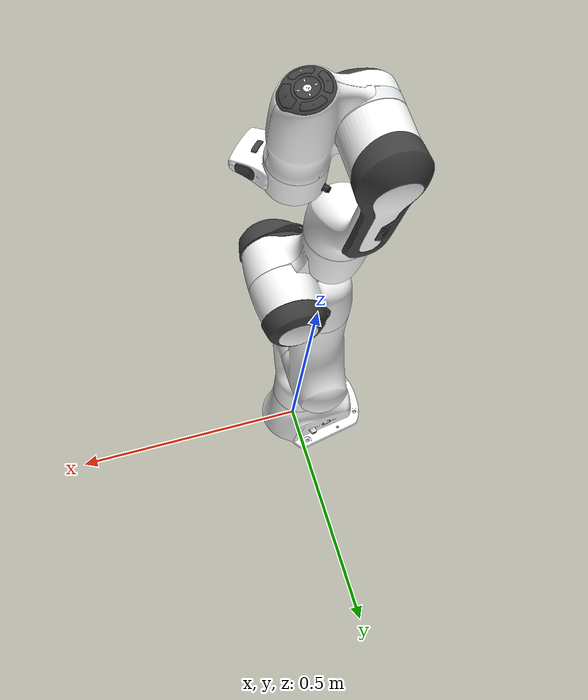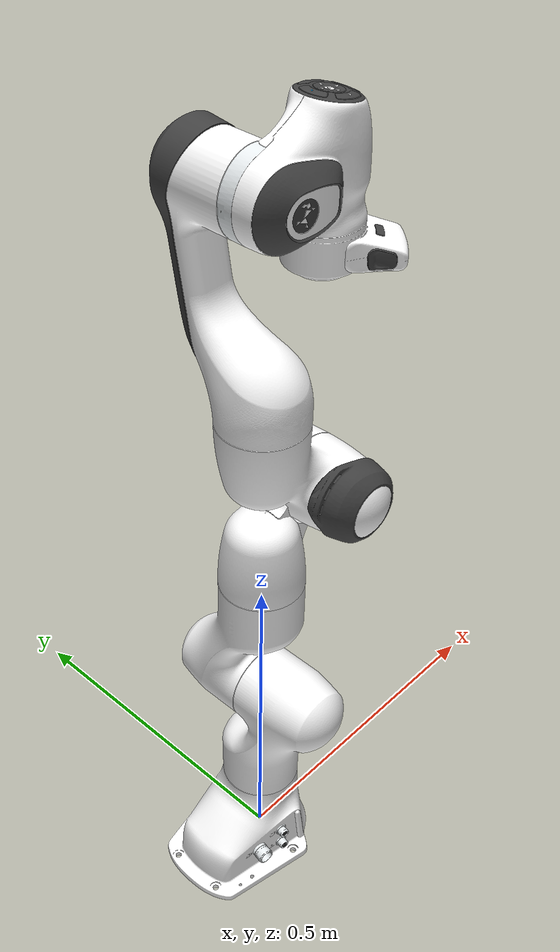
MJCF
<mujoco model="panda nohand">
  <compiler angle="radian" meshdir="assets" autolimits="true"/>

  <option integrator="implicitfast" impratio="10"/>

  <default>
    <default class="panda">
      <material specular="0.5" shininess="0.25"/>
      <joint armature="0.1" damping="1" axis="0 0 1" range="-2.8973 2.8973"/>
      <general dyntype="none" biastype="affine" ctrlrange="-2.8973 2.8973" forcerange="-87 87"/>
      <default class="finger">
        <joint axis="0 1 0" type="slide" range="0 0.04"/>
      </default>

      <default class="panda/visual">
        <geom type="mesh" contype="0" conaffinity="0" group="2"/>
      </default>
      <default class="panda/collision">
        <geom type="mesh" group="3"/>
      </default>
      <site size="0.001" rgba="0.5 0.5 0.5 0.3" group="4"/>
    </default>
  </default>

  <asset>
    <material class="panda" name="white" rgba="1 1 1 1"/>
    <material class="panda" name="off_white" rgba="0.901961 0.921569 0.929412 1"/>
    <material class="panda" name="dark_grey" rgba="0.25 0.25 0.25 1"/>
    <material class="panda" name="green" rgba="0 1 0 1"/>
    <material class="panda" name="light_blue" rgba="0.039216 0.541176 0.780392 1"/>

    <!-- Collision meshes -->
    <mesh name="link0_c" file="link0.stl"/>
    <mesh name="link1_c" file="link1.stl"/>
    <mesh name="link2_c" file="link2.stl"/>
    <mesh name="link3_c" file="link3.stl"/>
    <mesh name="link4_c" file="link4.stl"/>
    <mesh name="link5_c0" file="link5_collision_0.obj"/>
    <mesh name="link5_c1" file="link5_collision_1.obj"/>
    <mesh name="link5_c2" file="link5_collision_2.obj"/>
    <mesh name="link6_c" file="link6.stl"/>
    <mesh name="link7_c" file="link7.stl"/>

    <!-- Visual meshes -->
    <mesh file="link0_0.obj"/>
    <mesh file="link0_1.obj"/>
    <mesh file="link0_2.obj"/>
    <mesh file="link0_3.obj"/>
    <mesh file="link0_4.obj"/>
    <mesh file="link0_5.obj"/>
    <mesh file="link0_7.obj"/>
    <mesh file="link0_8.obj"/>
    <mesh file="link0_9.obj"/>
    <mesh file="link0_10.obj"/>
    <mesh file="link0_11.obj"/>
    <mesh file="link1.obj"/>
    <mesh file="link2.obj"/>
    <mesh file="link3_0.obj"/>
    <mesh file="link3_1.obj"/>
    <mesh file="link3_2.obj"/>
    <mesh file="link3_3.obj"/>
    <mesh file="link4_0.obj"/>
    <mesh file="link4_1.obj"/>
    <mesh file="link4_2.obj"/>
    <mesh file="link4_3.obj"/>
    <mesh file="link5_0.obj"/>
    <mesh file="link5_1.obj"/>
    <mesh file="link5_2.obj"/>
    <mesh file="link6_0.obj"/>
    <mesh file="link6_1.obj"/>
    <mesh file="link6_2.obj"/>
    <mesh file="link6_3.obj"/>
    <mesh file="link6_4.obj"/>
    <mesh file="link6_5.obj"/>
    <mesh file="link6_6.obj"/>
    <mesh file="link6_7.obj"/>
    <mesh file="link6_8.obj"/>
    <mesh file="link6_9.obj"/>
    <mesh file="link6_10.obj"/>
    <mesh file="link6_11.obj"/>
    <mesh file="link6_12.obj"/>
    <mesh file="link6_13.obj"/>
    <mesh file="link6_14.obj"/>
    <mesh file="link6_15.obj"/>
    <mesh file="link6_16.obj"/>
    <mesh file="link7_0.obj"/>
    <mesh file="link7_1.obj"/>
    <mesh file="link7_2.obj"/>
    <mesh file="link7_3.obj"/>
    <mesh file="link7_4.obj"/>
    <mesh file="link7_5.obj"/>
    <mesh file="link7_6.obj"/>
    <mesh file="link7_7.obj"/>
  </asset>

  <worldbody>
    <light name="top" pos="0 0 2" mode="trackcom"/>
    <body name="link0" childclass="panda">
      <inertial mass="0.629769" pos="-0.041018 -0.00014 0.049974"
        fullinertia="0.00315 0.00388 0.004285 8.2904e-7 0.00015 8.2299e-6"/>
      <geom mesh="link0_0" material="off_white" class="panda/visual"/>
      <geom mesh="link0_1" material="dark_grey" class="panda/visual"/>
      <geom mesh="link0_2" material="off_white" class="panda/visual"/>
      <geom mesh="link0_3" material="dark_grey" class="panda/visual"/>
      <geom mesh="link0_4" material="off_white" class="panda/visual"/>
      <geom mesh="link0_5" material="dark_grey" class="panda/visual"/>
      <geom mesh="link0_7" material="white" class="panda/visual"/>
      <geom mesh="link0_8" material="white" class="panda/visual"/>
      <geom mesh="link0_9" material="dark_grey" class="panda/visual"/>
      <geom mesh="link0_10" material="off_white" class="panda/visual"/>
      <geom mesh="link0_11" material="white" class="panda/visual"/>
      <geom mesh="link0_c" class="panda/collision"/>
      <body name="link1" pos="0 0 0.333">
        <inertial mass="4.970684" pos="0.003875 0.002081 -0.04762"
          fullinertia="0.70337 0.70661 0.0091170 -0.00013900 0.0067720 0.019169"/>
        <joint name="joint1"/>
        <geom material="white" mesh="link1" class="panda/visual"/>
        <geom mesh="link1_c" class="panda/collision"/>
        <body name="link2" quat="1 -1 0 0">
          <inertial mass="0.646926" pos="-0.003141 -0.02872 0.003495"
            fullinertia="0.0079620 2.8110e-2 2.5995e-2 -3.925e-3 1.0254e-2 7.04e-4"/>
          <joint name="joint2" range="-1.7628 1.7628"/>
          <geom material="white" mesh="link2" class="panda/visual"/>
          <geom mesh="link2_c" class="panda/collision"/>
          <body name="link3" pos="0 -0.316 0" quat="1 1 0 0">
            <joint name="joint3"/>
            <inertial mass="3.228604" pos="2.7518e-2 3.9252e-2 -6.6502e-2"
              fullinertia="3.7242e-2 3.6155e-2 1.083e-2 -4.761e-3 -1.1396e-2 -1.2805e-2"/>
            <geom mesh="link3_0" material="white" class="panda/visual"/>
            <geom mesh="link3_1" material="white" class="panda/visual"/>
            <geom mesh="link3_2" material="white" class="panda/visual"/>
            <geom mesh="link3_3" material="dark_grey" class="panda/visual"/>
            <geom mesh="link3_c" class="panda/collision"/>
            <body name="link4" pos="0.0825 0 0" quat="1 1 0 0">
              <inertial mass="3.587895" pos="-5.317e-2 1.04419e-1 2.7454e-2"
                fullinertia="2.5853e-2 1.9552e-2 2.8323e-2 7.796e-3 -1.332e-3 8.641e-3"/>
              <joint name="joint4" range="-3.0718 -0.0698"/>
              <geom mesh="link4_0" material="white" class="panda/visual"/>
              <geom mesh="link4_1" material="white" class="panda/visual"/>
              <geom mesh="link4_2" material="dark_grey" class="panda/visual"/>
              <geom mesh="link4_3" material="white" class="panda/visual"/>
              <geom mesh="link4_c" class="panda/collision"/>
              <body name="link5" pos="-0.0825 0.384 0" quat="1 -1 0 0">
                <inertial mass="1.225946" pos="-1.1953e-2 4.1065e-2 -3.8437e-2"
                  fullinertia="3.5549e-2 2.9474e-2 8.627e-3 -2.117e-3 -4.037e-3 2.29e-4"/>
                <joint name="joint5"/>
                <geom mesh="link5_0" material="dark_grey" class="panda/visual"/>
                <geom mesh="link5_1" material="white" class="panda/visual"/>
                <geom mesh="link5_2" material="white" class="panda/visual"/>
                <geom mesh="link5_c0" class="panda/collision"/>
                <geom mesh="link5_c1" class="panda/collision"/>
                <geom mesh="link5_c2" class="panda/collision"/>
                <body name="link6" quat="1 1 0 0">
                  <inertial mass="1.666555" pos="6.0149e-2 -1.4117e-2 -1.0517e-2"
                    fullinertia="1.964e-3 4.354e-3 5.433e-3 1.09e-4 -1.158e-3 3.41e-4"/>
                  <joint name="joint6" range="-0.0175 3.7525"/>
                  <geom mesh="link6_0" material="off_white" class="panda/visual"/>
                  <geom mesh="link6_1" material="white" class="panda/visual"/>
                  <geom mesh="link6_2" material="dark_grey" class="panda/visual"/>
                  <geom mesh="link6_3" material="white" class="panda/visual"/>
                  <geom mesh="link6_4" material="white" class="panda/visual"/>
                  <geom mesh="link6_5" material="white" class="panda/visual"/>
                  <geom mesh="link6_6" material="white" class="panda/visual"/>
                  <geom mesh="link6_7" material="light_blue" class="panda/visual"/>
                  <geom mesh="link6_8" material="light_blue" class="panda/visual"/>
                  <geom mesh="link6_9" material="dark_grey" class="panda/visual"/>
                  <geom mesh="link6_10" material="dark_grey" class="panda/visual"/>
                  <geom mesh="link6_11" material="white" class="panda/visual"/>
                  <geom mesh="link6_12" material="green" class="panda/visual"/>
                  <geom mesh="link6_13" material="white" class="panda/visual"/>
                  <geom mesh="link6_14" material="dark_grey" class="panda/visual"/>
                  <geom mesh="link6_15" material="dark_grey" class="panda/visual"/>
                  <geom mesh="link6_16" material="white" class="panda/visual"/>
                  <geom mesh="link6_c" class="panda/collision"/>
                  <body name="link7" pos="0.088 0 0" quat="1 1 0 0">
                    <inertial mass="7.35522e-01" pos="1.0517e-2 -4.252e-3 6.1597e-2"
                      fullinertia="1.2516e-2 1.0027e-2 4.815e-3 -4.28e-4 -1.196e-3 -7.41e-4"/>
                    <joint name="joint7"/>
                    <geom mesh="link7_0" material="white" class="panda/visual"/>
                    <geom mesh="link7_1" material="dark_grey" class="panda/visual"/>
                    <geom mesh="link7_2" material="dark_grey" class="panda/visual"/>
                    <geom mesh="link7_3" material="dark_grey" class="panda/visual"/>
                    <geom mesh="link7_4" material="dark_grey" class="panda/visual"/>
                    <geom mesh="link7_5" material="dark_grey" class="panda/visual"/>
                    <geom mesh="link7_6" material="dark_grey" class="panda/visual"/>
                    <geom mesh="link7_7" material="white" class="panda/visual"/>
                    <geom mesh="link7_c" class="panda/collision"/>
                    <body name="attachment" pos="0 0 0.107" quat="0.3826834 0 0 0.9238795">
                      <site name="attachment_site"/>
                    </body>
                  </body>
                </body>
              </body>
            </body>
          </body>
        </body>
      </body>
    </body>
  </worldbody>

  <actuator>
    <general class="panda" name="actuator1" joint="joint1" gainprm="4500" biasprm="0 -4500 -450"/>
    <general class="panda" name="actuator2" joint="joint2" gainprm="4500" biasprm="0 -4500 -450"
      ctrlrange="-1.7628 1.7628"/>
    <general class="panda" name="actuator3" joint="joint3" gainprm="3500" biasprm="0 -3500 -350"/>
    <general class="panda" name="actuator4" joint="joint4" gainprm="3500" biasprm="0 -3500 -350"
      ctrlrange="-3.0718 -0.0698"/>
    <general class="panda" name="actuator5" joint="joint5" gainprm="2000" biasprm="0 -2000 -200" forcerange="-12 12"/>
    <general class="panda" name="actuator6" joint="joint6" gainprm="2000" biasprm="0 -2000 -200" forcerange="-12 12"
      ctrlrange="-0.0175 3.7525"/>
    <general class="panda" name="actuator7" joint="joint7" gainprm="2000" biasprm="0 -2000 -200" forcerange="-12 12"/>
  </actuator>

  <keyframe>
    <key name="home" qpos="0 0 0 -1.57079 0 1.57079 -0.7853" ctrl="0 0 0 -1.57079 0 1.57079 -0.7853"/>
  </keyframe>
</mujoco>
